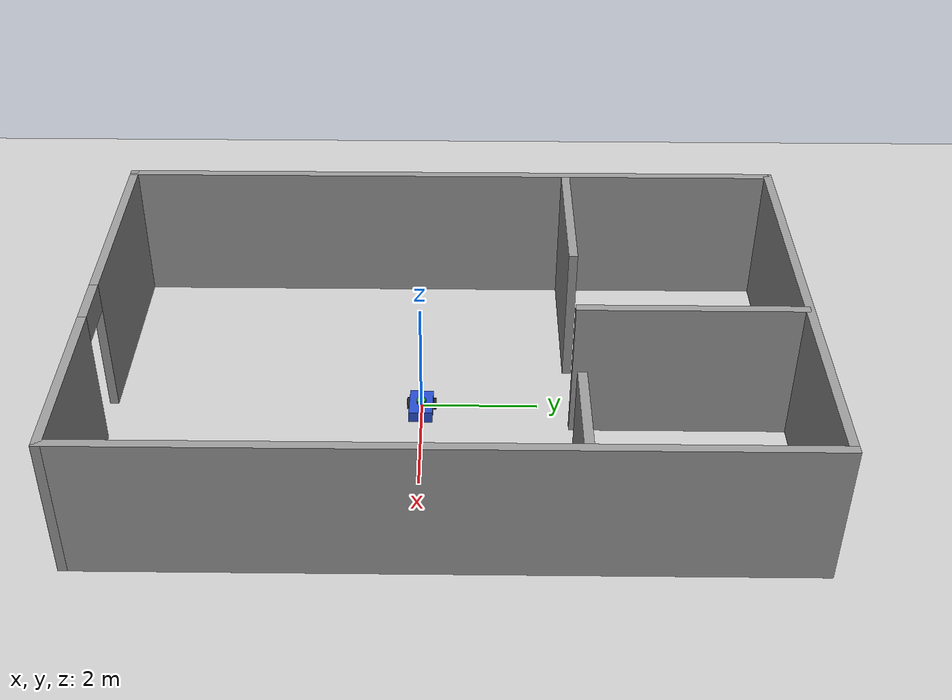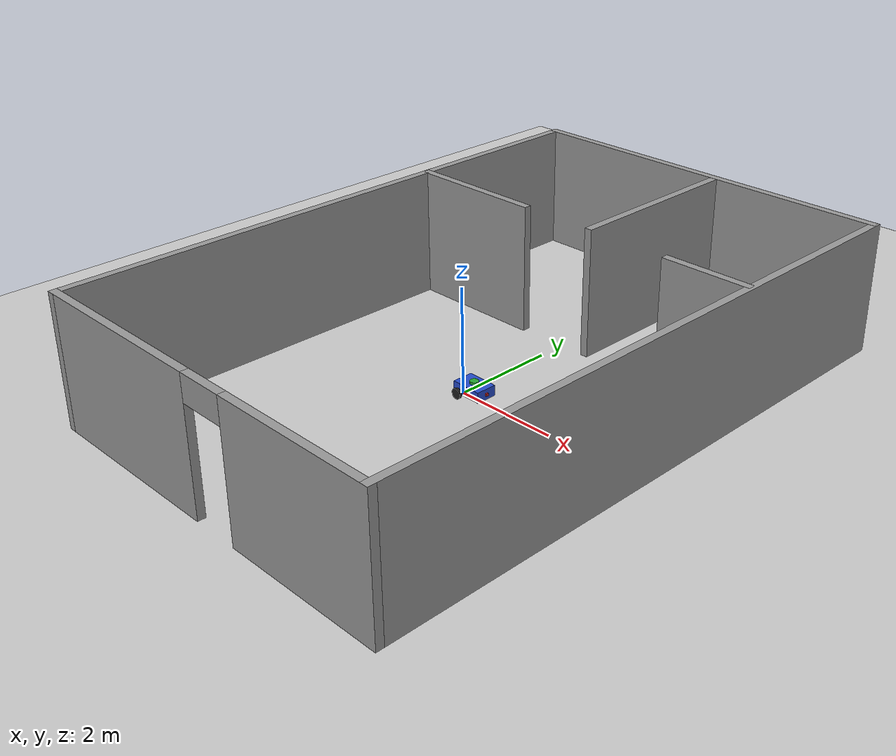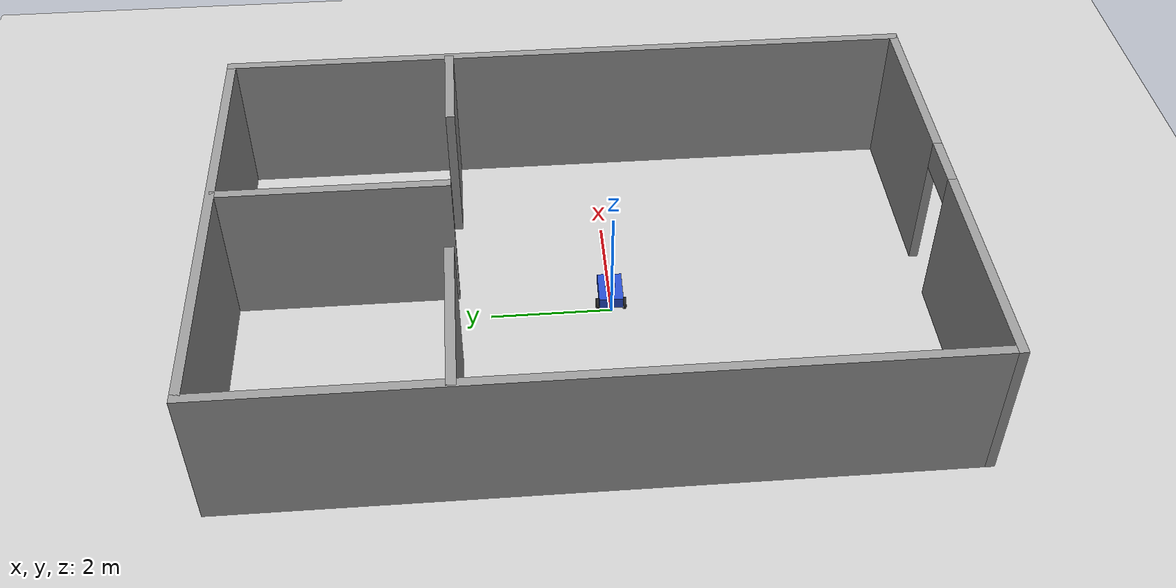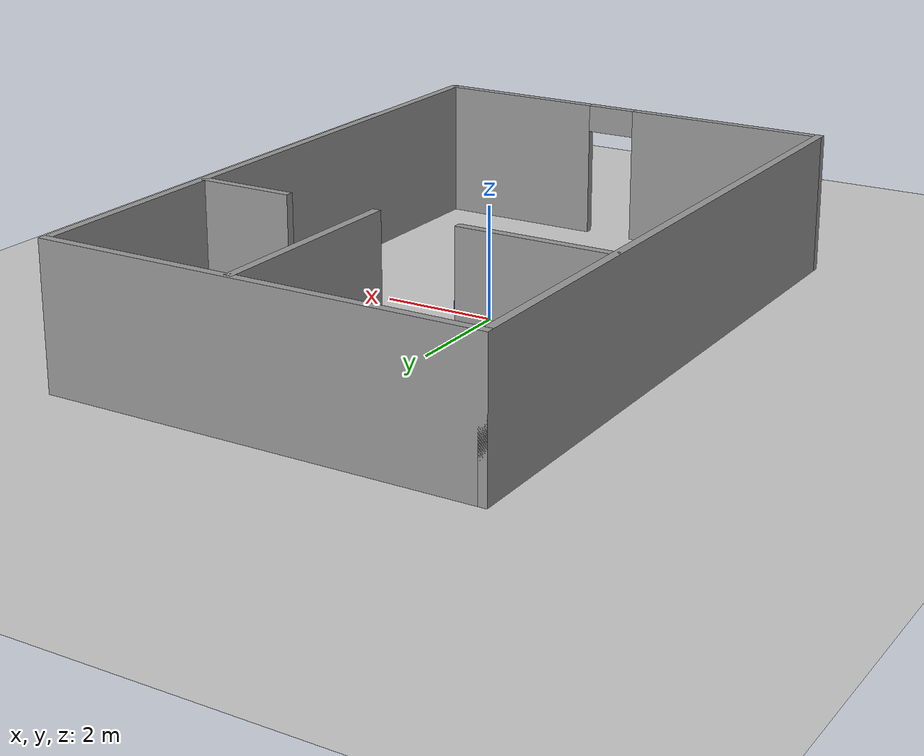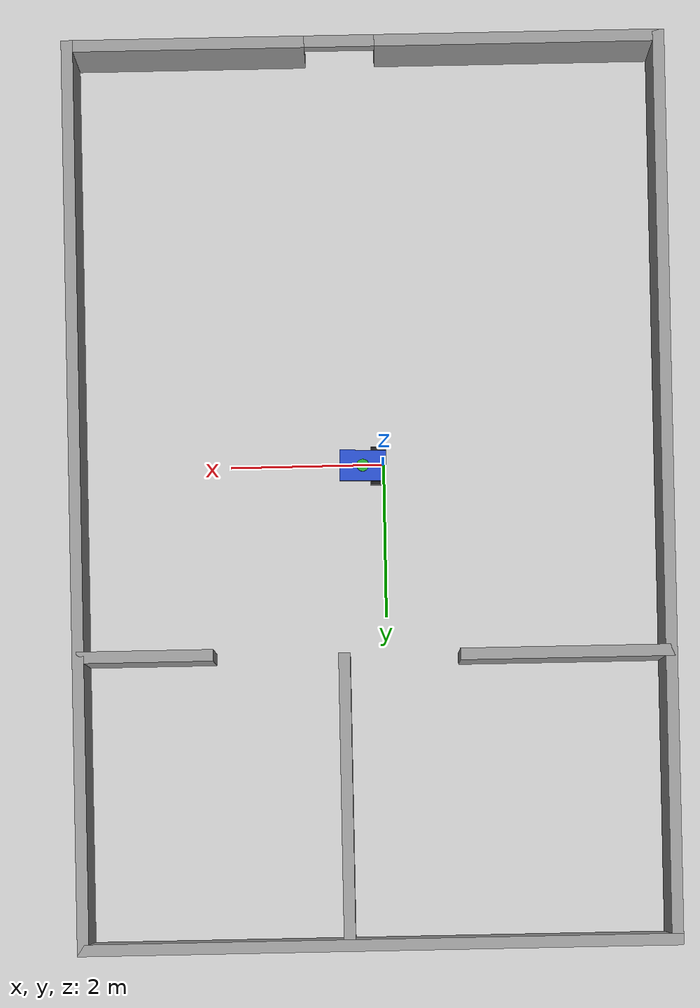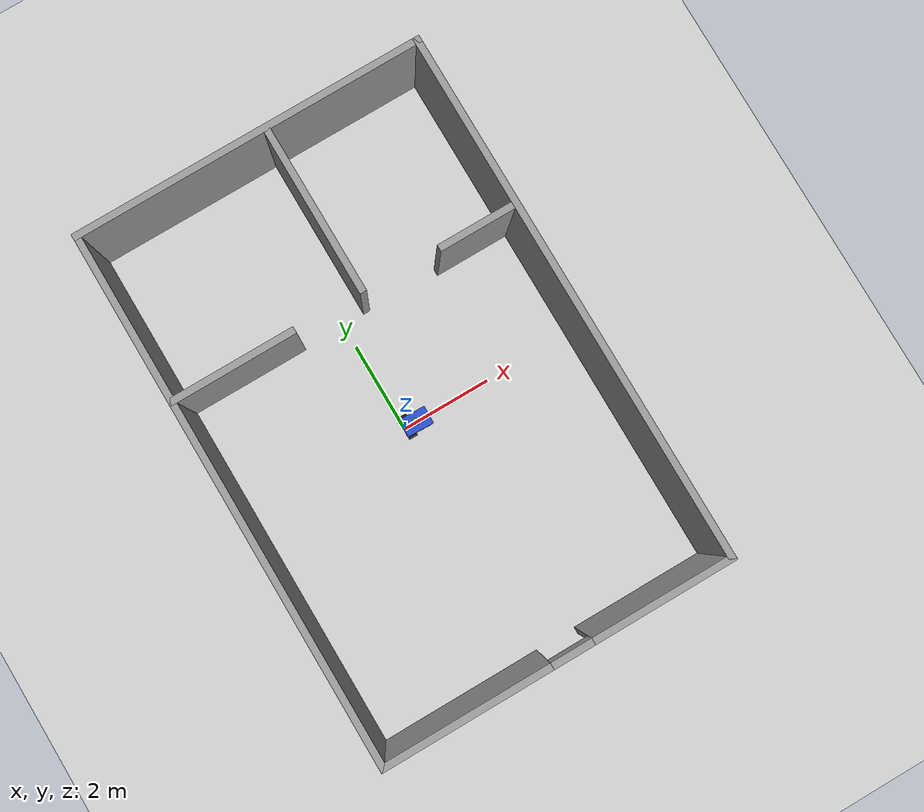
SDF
<sdf version="1.7">
 <world name="default">
  <light name="sun" type="directional">
   <pose>0 0 10 0 -0 0</pose>
   <diffuse>0.8 0.8 0.8 1</diffuse>
   <specular>0.2 0.2 0.2 1</specular>
   <attenuation>
    <range>1000</range>
    <constant>0.9</constant>
    <linear>0.01</linear>
    <quadratic>0.001</quadratic>
   </attenuation>
   <direction>-0.5 0.1 -0.9</direction>
   <spot><inner_angle>0</inner_angle><outer_angle>0</outer_angle><falloff>0</falloff></spot>
  </light>
  <model name="ground_plane">
   <static>1</static>
   <link name="link">
    <collision name="collision">
     <geometry><plane><normal>0 0 1</normal><size>100 100</size></plane></geometry>
     <surface><friction><ode><mu>100</mu><mu2>50</mu2></ode></friction></surface>
    </collision>
    <visual name="visual">
     <cast_shadows>0</cast_shadows>
     <geometry><plane><normal>0 0 1</normal><size>100 100</size></plane></geometry>
     <material>
      <script><uri>file://media/materials/scripts/gazebo.material</uri><name>Gazebo/Grey</name></script>
     </material>
    </visual>
   </link>
  </model>
  <gravity>0 0 -9.8</gravity>
  <magnetic_field>6e-06 2.3e-05 -4.2e-05</magnetic_field>
  <atmosphere type="adiabatic"/>
  <physics type="ode">
   <max_step_size>0.001</max_step_size>
   <real_time_factor>1</real_time_factor>
   <real_time_update_rate>1000</real_time_update_rate>
  </physics>
  <scene><ambient>0.4 0.4 0.4 1</ambient><background>0.7 0.7 0.7 1</background><shadows>1</shadows></scene>
  <audio><device>default</device></audio>
  <spherical_coordinates>
   <surface_model>EARTH_WGS84</surface_model>
   <latitude_deg>0</latitude_deg>
   <longitude_deg>0</longitude_deg>
   <elevation>0</elevation>
   <heading_deg>0</heading_deg>
  </spherical_coordinates>
  <model name="loc_robot">
   <link name="base_footprint">
    <inertial>
     <pose>0.040323 0 0.191774 0 -0 0</pose>
     <mass>6.2</mass>
     <inertia>
      <ixx>0.351324</ixx>
      <ixy>0</ixy>
      <ixz>0.0129435</ixz>
      <iyy>0.939577</iyy>
      <iyz>0</iyz>
      <izz>0.726979</izz>
     </inertia>
    </inertial>
    <collision name="base_footprint_fixed_joint_lump__base_link_collision">
     <pose>0 0 0.2 0 -0 0</pose>
     <geometry><box><size>0.6 0.4 0.2</size></box></geometry>
    </collision>
    <collision name="base_footprint_fixed_joint_lump__caster_wheel_link_collision_1">
     <pose>0.2 0 0.05 0 -0 0</pose>
     <geometry><sphere><radius>0.05</radius></sphere></geometry>
     <surface><friction><ode><mu>0.1</mu><mu2>0.1</mu2></ode></friction></surface>
    </collision>
    <collision name="base_footprint_fixed_joint_lump__camera_link_collision_2">
     <pose>0.3 0 0.2 0 -0 0</pose>
     <geometry><box><size>0.05 0.05 0.05</size></box></geometry>
     <surface><friction><ode><mu>0.1</mu><mu2>0.1</mu2></ode></friction></surface>
    </collision>
    <collision name="base_footprint_fixed_joint_lump__lidar_link_collision_3">
     <pose>0 0 0.32 0 -0 0</pose>
     <geometry><cylinder><length>0.05</length><radius>0.08</radius></cylinder></geometry>
     <surface><friction><ode><mu>0.1</mu><mu2>0.1</mu2></ode></friction></surface>
    </collision>
    <visual name="base_footprint_fixed_joint_lump__base_link_visual">
     <pose>0 0 0.2 0 -0 0</pose>
     <geometry><box><size>0.6 0.4 0.2</size></box></geometry>
     <material>
      <script><name>Gazebo/Blue</name><uri>file://media/materials/scripts/gazebo.material</uri></script>
     </material>
    </visual>
    <visual name="base_footprint_fixed_joint_lump__caster_wheel_link_visual_1">
     <pose>0.2 0 0.05 0 -0 0</pose>
     <geometry><sphere><radius>0.05</radius></sphere></geometry>
     <material>
      <script><name>Gazebo/Black</name><uri>file://media/materials/scripts/gazebo.material</uri></script>
     </material>
    </visual>
    <visual name="base_footprint_fixed_joint_lump__camera_link_visual_2">
     <pose>0.3 0 0.2 0 -0 0</pose>
     <geometry><box><size>0.05 0.05 0.05</size></box></geometry>
     <material>
      <script><name>Gazebo/Red</name><uri>file://media/materials/scripts/gazebo.material</uri></script>
     </material>
    </visual>
    <visual name="base_footprint_fixed_joint_lump__lidar_link_visual_3">
     <pose>0 0 0.32 0 -0 0</pose>
     <geometry><cylinder><length>0.05</length><radius>0.08</radius></cylinder></geometry>
     <material>
      <script><name>Gazebo/Green</name><uri>file://media/materials/scripts/gazebo.material</uri></script>
     </material>
    </visual>
    <sensor name="camera_sensor" type="camera">
     <visualize>1</visualize>
     <update_rate>10</update_rate>
     <plugin name="camera_controller" filename="libgazebo_ros_camera.so">
      <frameName>camera_link</frameName>
     </plugin>
     <pose>0.3 0 0.2 0 -0 0</pose>
     <camera>
      <horizontal_fov>1.047</horizontal_fov>
      <image><width>320</width><height>240</height></image>
      <clip><near>0.1</near><far>100</far></clip>
     </camera>
    </sensor>
    <sensor name="laser" type="ray">
     <visualize>1</visualize>
     <update_rate>10</update_rate>
     <ray>
      <scan>
       <horizontal>
        <samples>180</samples>
        <min_angle>-3.14</min_angle>
        <max_angle>3.14</max_angle>
        <resolution>1</resolution>
       </horizontal>
       <vertical><samples>1</samples><min_angle>0</min_angle><max_angle>0</max_angle></vertical>
      </scan>
      <range><min>0.3</min><max>12</max></range>
     </ray>
     <plugin name="laser_controller" filename="libgazebo_ros_ray_sensor.so">
      <ros><argument>~/out:=scan</argument></ros>
      <output_type>sensor_msgs/LaserScan</output_type>
      <frame_name>lidar_link</frame_name>
     </plugin>
     <pose>0 0 0.32 0 -0 0</pose>
    </sensor>
   </link>
   <joint name="base_left_wheel_joint" type="revolute">
    <pose relative_to="base_footprint">-0.2 0.225 0.1 0 -0 0</pose>
    <parent>base_footprint</parent>
    <child>left_wheel_link</child>
    <axis>
     <xyz>0 1 0</xyz>
     <limit><lower>-1e+16</lower><upper>1e+16</upper></limit>
     <dynamics><spring_reference>0</spring_reference><spring_stiffness>0</spring_stiffness></dynamics>
    </axis>
   </joint>
   <link name="left_wheel_link">
    <pose relative_to="base_left_wheel_joint">0 0 0 0 -0 0</pose>
    <inertial>
     <pose>0 0 0 1.5708 -0 0</pose>
     <mass>1</mass>
     <inertia><ixx>0.0108333</ixx><ixy>0</ixy><ixz>0</ixz><iyy>0.0108333</iyy><iyz>0</iyz><izz>0.02</izz></inertia>
    </inertial>
    <collision name="left_wheel_link_collision">
     <pose>0 0 0 1.5708 -0 0</pose>
     <geometry><cylinder><length>0.05</length><radius>0.1</radius></cylinder></geometry>
    </collision>
    <visual name="left_wheel_link_visual">
     <pose>0 0 0 1.5708 -0 0</pose>
     <geometry><cylinder><length>0.05</length><radius>0.1</radius></cylinder></geometry>
     <material>
      <script><name>Gazebo/Black</name><uri>file://media/materials/scripts/gazebo.material</uri></script>
     </material>
    </visual>
   </link>
   <joint name="base_right_wheel_joint" type="revolute">
    <pose relative_to="base_footprint">-0.2 -0.225 0.1 0 -0 0</pose>
    <parent>base_footprint</parent>
    <child>right_wheel_link</child>
    <axis>
     <xyz>0 1 0</xyz>
     <limit><lower>-1e+16</lower><upper>1e+16</upper></limit>
     <dynamics><spring_reference>0</spring_reference><spring_stiffness>0</spring_stiffness></dynamics>
    </axis>
   </joint>
   <link name="right_wheel_link">
    <pose relative_to="base_right_wheel_joint">0 0 0 0 -0 0</pose>
    <inertial>
     <pose>0 0 0 1.5708 -0 0</pose>
     <mass>1</mass>
     <inertia><ixx>0.0108333</ixx><ixy>0</ixy><ixz>0</ixz><iyy>0.0108333</iyy><iyz>0</iyz><izz>0.02</izz></inertia>
    </inertial>
    <collision name="right_wheel_link_collision">
     <pose>0 0 0 1.5708 -0 0</pose>
     <geometry><cylinder><length>0.05</length><radius>0.1</radius></cylinder></geometry>
    </collision>
    <visual name="right_wheel_link_visual">
     <pose>0 0 0 1.5708 -0 0</pose>
     <geometry><cylinder><length>0.05</length><radius>0.1</radius></cylinder></geometry>
     <material>
      <script><name>Gazebo/Black</name><uri>file://media/materials/scripts/gazebo.material</uri></script>
     </material>
    </visual>
   </link>
   <static>0</static>
   <plugin name="diff_drive_controller" filename="libgazebo_ros_diff_drive.so">
    <update_rate>50</update_rate>
    <left_joint>base_left_wheel_joint</left_joint>
    <right_joint>base_right_wheel_joint</right_joint>
    <wheel_separation>0.45</wheel_separation>
    <wheel_diameter>0.2</wheel_diameter>
    <publish_odom>1</publish_odom>
    <publish_odom_tf>1</publish_odom_tf>
    <publish_wheel_tf>1</publish_wheel_tf>
    <odometry_topic>odom</odometry_topic>
    <odometry_frame>odom</odometry_frame>
    <robot_base_frame>base_footprint</robot_base_frame>
   </plugin>
   <pose>0.270533 0.004767 0 0 0 -0.023716</pose>
  </model>
  <model name="home.world">
   <pose>0.165899 0.456901 0 0 -0 0</pose>
   <link name="Wall_0">
    <collision name="Wall_0_Collision">
     <geometry><box><size>7.75 0.15 2.5</size></box></geometry>
     <pose>0 0 1.25 0 -0 0</pose>
    </collision>
    <visual name="Wall_0_Visual">
     <pose>0 0 1.25 0 -0 0</pose>
     <geometry><box><size>7.75 0.15 2.5</size></box></geometry>
     <material>
      <script><uri>file://media/materials/scripts/gazebo.material</uri><name>Gazebo/Grey</name></script>
      <ambient>1 1 1 1</ambient>
     </material>
     <meta><layer>0</layer></meta>
    </visual>
    <pose>-0 5.8 0 0 -0 0</pose>
   </link>
   <link name="Wall_1">
    <collision name="Wall_1_Collision">
     <geometry><box><size>11.75 0.15 2.5</size></box></geometry>
     <pose>0 0 1.25 0 -0 0</pose>
    </collision>
    <visual name="Wall_1_Visual">
     <pose>0 0 1.25 0 -0 0</pose>
     <geometry><box><size>11.75 0.15 2.5</size></box></geometry>
     <material>
      <script><uri>file://media/materials/scripts/gazebo.material</uri><name>Gazebo/Grey</name></script>
      <ambient>1 1 1 1</ambient>
     </material>
     <meta><layer>0</layer></meta>
    </visual>
    <pose>3.8 0 0 0 -0 -1.5708</pose>
   </link>
   <link name="Wall_10">
    <collision name="Wall_10_Collision">
     <geometry><box><size>2.75 0.15 2.5</size></box></geometry>
     <pose>0 0 1.25 0 -0 0</pose>
    </collision>
    <visual name="Wall_10_Visual">
     <pose>0 0 1.25 0 -0 0</pose>
     <geometry><box><size>2.75 0.15 2.5</size></box></geometry>
     <material>
      <script><uri>file://media/materials/scripts/gazebo.material</uri><name>Gazebo/Grey</name></script>
      <ambient>1 1 1 1</ambient>
     </material>
     <meta><layer>0</layer></meta>
    </visual>
    <pose>-2.47435 2.10257 0 0 -0 0</pose>
   </link>
   <link name="Wall_2">
    <pose>-0 -5.8 0 0 -0 3.14159</pose>
    <visual name="Wall_2_Visual_0">
     <pose>-2.31456 0 1.25 0 -0 0</pose>
     <geometry><box><size>3.12088 0.15 2.5</size></box></geometry>
     <material>
      <script><uri>file://media/materials/scripts/gazebo.material</uri><name>Gazebo/Grey</name></script>
      <ambient>1 1 1 1</ambient>
     </material>
     <meta><layer>0</layer></meta>
    </visual>
    <collision name="Wall_2_Collision_0">
     <geometry><box><size>3.12088 0.15 2.5</size></box></geometry>
     <pose>-2.31456 0 1.25 0 -0 0</pose>
    </collision>
    <visual name="Wall_2_Visual_1">
     <pose>2.01044 0 1.25 0 -0 0</pose>
     <geometry><box><size>3.72912 0.15 2.5</size></box></geometry>
     <material>
      <script><uri>file://media/materials/scripts/gazebo.material</uri><name>Gazebo/Grey</name></script>
      <ambient>1 1 1 1</ambient>
     </material>
     <meta><layer>0</layer></meta>
    </visual>
    <collision name="Wall_2_Collision_1">
     <geometry><box><size>3.72912 0.15 2.5</size></box></geometry>
     <pose>2.01044 0 1.25 0 -0 0</pose>
    </collision>
    <visual name="Wall_2_Visual_2">
     <pose>-0.304119 0 2.25 0 -0 0</pose>
     <geometry><box><size>0.9 0.15 0.5</size></box></geometry>
     <material>
      <script><uri>file://media/materials/scripts/gazebo.material</uri><name>Gazebo/Grey</name></script>
      <ambient>1 1 1 1</ambient>
     </material>
     <meta><layer>0</layer></meta>
    </visual>
    <collision name="Wall_2_Collision_2">
     <geometry><box><size>0.9 0.15 0.5</size></box></geometry>
     <pose>-0.304119 0 2.25 0 -0 0</pose>
    </collision>
   </link>
   <link name="Wall_3">
    <collision name="Wall_3_Collision">
     <geometry><box><size>11.75 0.15 2.5</size></box></geometry>
     <pose>0 0 1.25 0 -0 0</pose>
    </collision>
    <visual name="Wall_3_Visual">
     <pose>0 0 1.25 0 -0 0</pose>
     <geometry><box><size>11.75 0.15 2.5</size></box></geometry>
     <material>
      <script><uri>file://media/materials/scripts/gazebo.material</uri><name>Gazebo/Grey</name></script>
      <ambient>1 1 1 1</ambient>
     </material>
     <meta><layer>0</layer></meta>
    </visual>
    <pose>-3.8 0 0 0 -0 1.5708</pose>
   </link>
   <link name="Wall_5">
    <collision name="Wall_5_Collision">
     <geometry><box><size>3.75 0.15 2.5</size></box></geometry>
     <pose>0 0 1.25 0 -0 0</pose>
    </collision>
    <visual name="Wall_5_Visual">
     <pose>0 0 1.25 0 -0 0</pose>
     <geometry><box><size>3.75 0.15 2.5</size></box></geometry>
     <material>
      <script><uri>file://media/materials/scripts/gazebo.material</uri><name>Gazebo/Grey</name></script>
      <ambient>1 1 1 1</ambient>
     </material>
     <meta><layer>0</layer></meta>
    </visual>
    <pose>0.389161 3.93408 0 0 -0 -1.5708</pose>
   </link>
   <link name="Wall_8">
    <collision name="Wall_8_Collision">
     <geometry><box><size>1.75 0.15 2.5</size></box></geometry>
     <pose>0 0 1.25 0 -0 0</pose>
    </collision>
    <visual name="Wall_8_Visual">
     <pose>0 0 1.25 0 -0 0</pose>
     <geometry><box><size>1.75 0.15 2.5</size></box></geometry>
     <material>
      <script><uri>file://media/materials/scripts/gazebo.material</uri><name>Gazebo/Grey</name></script>
      <ambient>1 1 1 1</ambient>
     </material>
     <meta><layer>0</layer></meta>
    </visual>
    <pose>2.9431 2.05631 0 0 -0 3.14159</pose>
   </link>
   <static>1</static>
  </model>
 </world>
</sdf>
